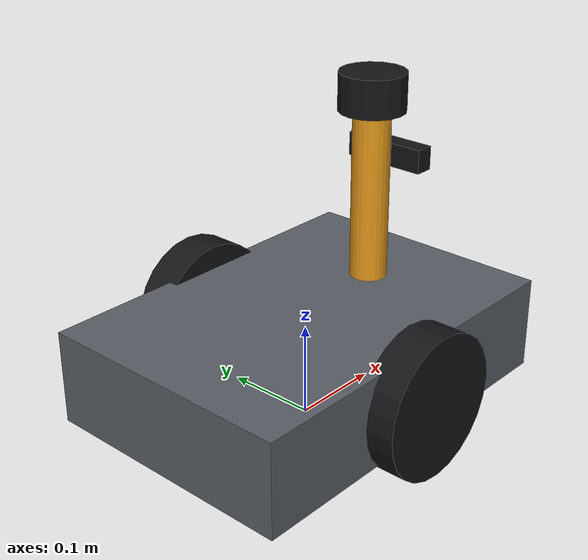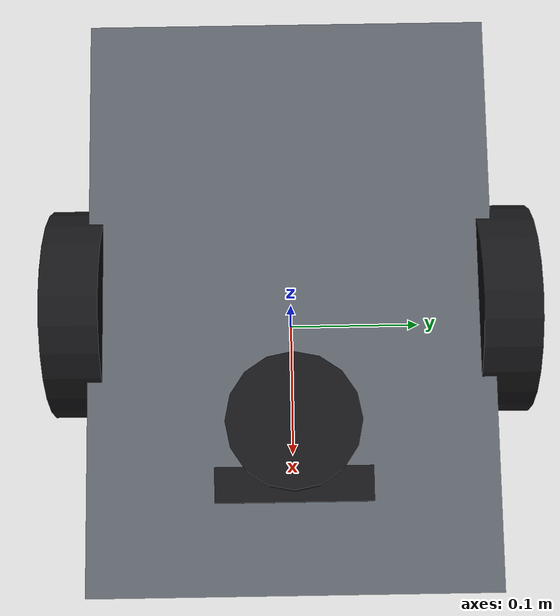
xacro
<?xml version="1.0"?>
<robot name="rover" xmlns:xacro="http://www.ros.org/wiki/xacro">

  <xacro:property name="base_l"  value="0.40"/>
  <xacro:property name="base_w"  value="0.28"/>
  <xacro:property name="base_h"  value="0.10"/>
  <xacro:property name="base_m"  value="6.0"/>
  <xacro:property name="wheel_r" value="0.075"/>
  <xacro:property name="wheel_w" value="0.04"/>
  <xacro:property name="wheel_m" value="0.5"/>
  <!-- Wheel separation: measured centre-to-centre. a later check verifies the
       odometry against this number, so it must match the joint origins below. -->
  <xacro:property name="track"   value="0.30"/>

  <material name="grey">  <color rgba="0.35 0.37 0.40 1"/></material>
  <material name="black"> <color rgba="0.08 0.08 0.09 1"/></material>
  <material name="amber"> <color rgba="0.90 0.60 0.10 1"/></material>

  <link name="base_footprint"/>

  <joint name="base_joint" type="fixed">
    <parent link="base_footprint"/>
    <child  link="base_link"/>
    <origin xyz="0 0 ${wheel_r}"/>
  </joint>

  <link name="base_link">
    <visual>
      <geometry><box size="${base_l} ${base_w} ${base_h}"/></geometry>
      <material name="grey"/>
    </visual>
    <collision>
      <geometry><box size="${base_l} ${base_w} ${base_h}"/></geometry>
    </collision>
    <inertial>
      <mass value="${base_m}"/>
      <inertia ixx="0.0446" ixy="0" ixz="0"
               iyy="0.0850" iyz="0"
               izz="0.1192"/>
    </inertial>
  </link>

  <xacro:macro name="wheel" params="name y">
    <link name="${name}_wheel">
      <visual>
        <origin rpy="1.5707963 0 0"/>
        <geometry><cylinder radius="${wheel_r}" length="${wheel_w}"/></geometry>
        <material name="black"/>
      </visual>
      <collision>
        <origin rpy="1.5707963 0 0"/>
        <geometry><cylinder radius="${wheel_r}" length="${wheel_w}"/></geometry>
        <surface>
          <friction><ode><mu>1.0</mu><mu2>1.0</mu2></ode></friction>
        </surface>
      </collision>
      <inertial>
        <mass value="${wheel_m}"/>
        <origin rpy="1.5707963 0 0"/>
        <inertia ixx="0.000769" ixy="0" ixz="0"
                 iyy="0.000769" iyz="0"
                 izz="0.001406"/>
      </inertial>
    </link>

    <joint name="${name}_wheel_joint" type="continuous">
      <parent link="base_link"/>
      <child  link="${name}_wheel"/>
      <!-- z=0 puts the axle at base_link origin, which sits at wheel_r above
           the ground via base_joint. So the wheel bottom touches z=0 exactly. -->
      <origin xyz="0 ${y} 0"/>
      <axis   xyz="0 1 0"/>
      <limit effort="12.0" velocity="8.0"/>
      <dynamics damping="0.01" friction="0.0"/>
    </joint>
  </xacro:macro>

  <xacro:wheel name="left"  y="${ track/2}"/>
  <xacro:wheel name="right" y="${-track/2}"/>

  <!-- Rear caster. A sphere, so it cannot fight the diff-drive kinematics the
       way a badly-modelled swivel wheel does. C3 S4 already taught why. -->
  <link name="caster">
    <visual>
      <geometry><sphere radius="0.030"/></geometry>
      <material name="black"/>
    </visual>
    <collision>
      <geometry><sphere radius="0.030"/></geometry>
      <surface>
        <friction><ode><mu>0.05</mu><mu2>0.05</mu2></ode></friction>
      </surface>
    </collision>
    <inertial>
      <mass value="0.15"/>
      <inertia ixx="5.4e-5" ixy="0" ixz="0" iyy="5.4e-5" iyz="0" izz="5.4e-5"/>
    </inertial>
  </link>
  <joint name="caster_joint" type="fixed">
    <parent link="base_link"/>
    <child  link="caster"/>
    <origin xyz="-0.15 0 ${-wheel_r + 0.030}"/>
  </joint>

  <!-- Sensor mast -->
  <link name="mast">
    <visual>
      <geometry><cylinder radius="0.02" length="0.18"/></geometry>
      <material name="amber"/>
    </visual>
    <collision><geometry><cylinder radius="0.02" length="0.18"/></geometry></collision>
    <inertial>
      <mass value="0.30"/>
      <inertia ixx="8.5e-4" ixy="0" ixz="0" iyy="8.5e-4" iyz="0" izz="6.0e-5"/>
    </inertial>
  </link>
  <joint name="mast_joint" type="fixed">
    <parent link="base_link"/>
    <child  link="mast"/>
    <origin xyz="0.10 0 ${base_h/2 + 0.09}"/>
  </joint>

  <link name="lidar_link">
    <visual>
      <geometry>
        <mesh filename="package://rover_description/meshes/lidar_housing.stl"/>
      </geometry>
      <material name="black"/>
    </visual>
    <collision>
      <geometry><cylinder radius="0.035" length="0.04"/></geometry>
    </collision>
    <inertial>
      <mass value="0.10"/>
      <inertia ixx="4.4e-5" ixy="0" ixz="0" iyy="4.4e-5" iyz="0" izz="6.1e-5"/>
    </inertial>
  </link>
  <joint name="lidar_joint" type="fixed">
    <parent link="mast"/>
    <child  link="lidar_link"/>
    <origin xyz="0 0 0.11"/>
  </joint>

  <link name="camera_link">
    <visual>
      <geometry><box size="0.02 0.09 0.025"/></geometry>
      <material name="black"/>
    </visual>
    <inertial>
      <mass value="0.08"/>
      <inertia ixx="5.9e-5" ixy="0" ixz="0" iyy="6.0e-6" iyz="0" izz="5.9e-5"/>
    </inertial>
  </link>
  <joint name="camera_joint" type="fixed">
    <parent link="mast"/>
    <child  link="camera_link"/>
    <origin xyz="0.03 0 0.04"/>
  </joint>

  <link name="camera_optical_frame"/>
  <joint name="camera_optical_joint" type="fixed">
    <parent link="camera_link"/>
    <child  link="camera_optical_frame"/>
    <origin rpy="${-pi/2} 0 ${-pi/2}"/>
  </joint>

  <!-- ================= ros2_control ================= -->
  <ros2_control name="GzSystem" type="system">
    <hardware>
      <plugin>gz_ros2_control/GazeboSimSystem</plugin>
    </hardware>
    <joint name="left_wheel_joint">
      <command_interface name="velocity">
        <param name="min">-8.0</param>
        <param name="max"> 8.0</param>
      </command_interface>
      <state_interface name="position"/>
      <state_interface name="velocity"/>
    </joint>
    <joint name="right_wheel_joint">
      <command_interface name="velocity">
        <param name="min">-8.0</param>
        <param name="max"> 8.0</param>
      </command_interface>
      <state_interface name="position"/>
      <state_interface name="velocity"/>
    </joint>
  </ros2_control>

  <gazebo>
    <plugin filename="gz_ros2_control-system"
            name="gz_ros2_control::GazeboSimROS2ControlPlugin">
      <parameters>$(find rover_description)/config/controllers.yaml</parameters>
    </plugin>

    <plugin filename="gz-sim-linearbatteryplugin-system"
            name="gz::sim::systems::LinearBatteryPlugin">
      <battery_name>rover_battery</battery_name>
      <voltage>12.6</voltage>
      <open_circuit_voltage_constant_coef>12.6</open_circuit_voltage_constant_coef>
      <capacity>7.0</capacity>
      <power_load>6.0</power_load>
    </plugin>
  </gazebo>

  <gazebo reference="lidar_link">
    <sensor name="lidar" type="gpu_lidar">
      <topic>scan</topic>
      <update_rate>10</update_rate>
      <lidar>
        <scan><horizontal><samples>640</samples>
          <min_angle>-2.356</min_angle><max_angle>2.356</max_angle>
        </horizontal></scan>
        <range><min>0.12</min><max>12.0</max><resolution>0.01</resolution></range>
        <noise><type>gaussian</type><mean>0.0</mean><stddev>0.01</stddev></noise>
      </lidar>
      <always_on>1</always_on>
      <visualize>true</visualize>
    </sensor>
  </gazebo>

  <gazebo reference="camera_link">
    <sensor name="depth_camera" type="depth_camera">
      <topic>depth</topic>
      <update_rate>30</update_rate>
      <camera>
        <horizontal_fov>1.0472</horizontal_fov>
        <image><width>640</width><height>480</height><format>R_FLOAT32</format></image>
        <clip><near>0.10</near><far>10.0</far></clip>
      </camera>
      <always_on>1</always_on>
    </sensor>
  </gazebo>

  <gazebo reference="left_wheel">
    <mu1>1.0</mu1><mu2>1.0</mu2>
  </gazebo>
  <gazebo reference="right_wheel">
    <mu1>1.0</mu1><mu2>1.0</mu2>
  </gazebo>
  <gazebo reference="caster">
    <mu1>0.05</mu1><mu2>0.05</mu2>
  </gazebo>

</robot>
